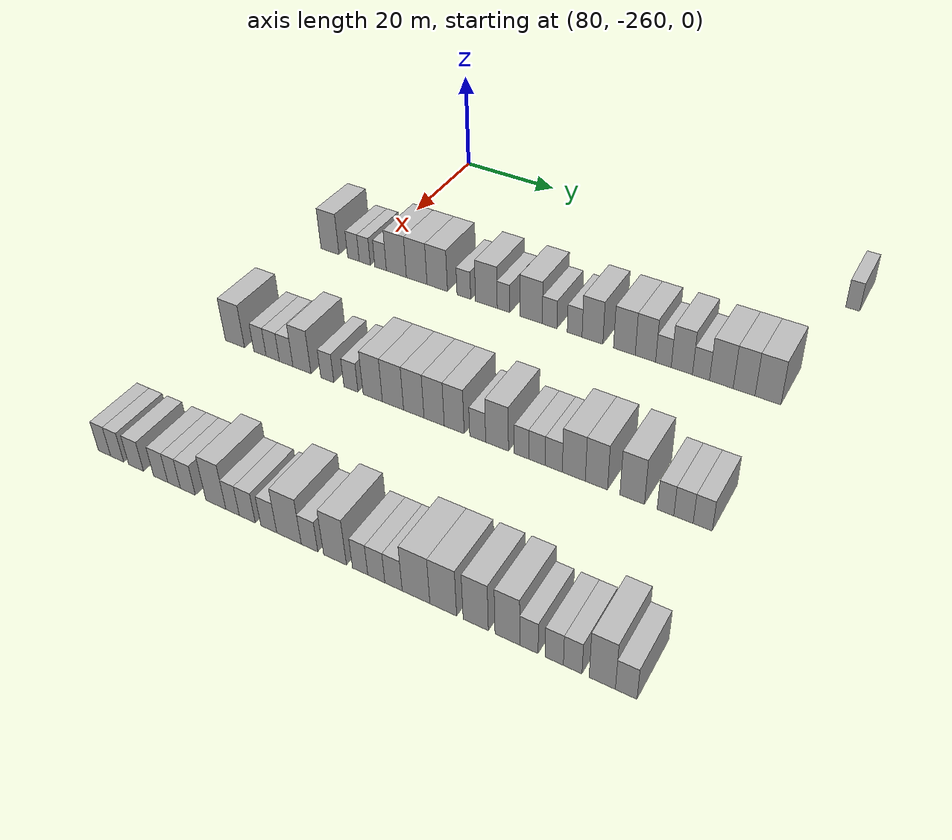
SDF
<sdf version="1.6">
 <world name="default">
  <model name="building_524">
   <static>1</static>
   <pose>85.0000 -175.2092 0 0.000000 0.000000 0.000000</pose>
   <link name="link">
    <pose>0 0 3.00 0 0 0</pose>
    <collision name="collision"><geometry><box><size>10.0000 2.5153 6.0000</size></box></geometry></collision>
    <visual name="visual">
     <cast_shadows>0</cast_shadows>
     <geometry><box><size>10.0000 2.5153 6.0000</size></box></geometry>
     <material>
      <script>
       <uri>model://HANNAS_wall/materials/scripts</uri>
       <uri>model://HANNAS_wall/materials/textures</uri>
       <name>vrc/HANNAS_wall</name>
      </script>
     </material>
    </visual>
   </link>
  </model>
  <model name="building_735">
   <static>1</static>
   <pose>115.0000 -266.6170 0 0.000000 0.000000 0.000000</pose>
   <link name="link">
    <pose>0 0 4.50 0 0 0</pose>
    <collision name="collision"><geometry><box><size>10.0000 4.1498 9.0000</size></box></geometry></collision>
    <visual name="visual">
     <cast_shadows>0</cast_shadows>
     <geometry><box><size>10.0000 4.1498 9.0000</size></box></geometry>
     <material>
      <script>
       <uri>model://HANNAS_wall/materials/scripts</uri>
       <uri>model://HANNAS_wall/materials/textures</uri>
       <name>vrc/HANNAS_wall</name>
      </script>
     </material>
    </visual>
   </link>
  </model>
  <model name="building_736">
   <static>1</static>
   <pose>115.0000 -261.2384 0 0.000000 0.000000 0.000000</pose>
   <link name="link">
    <pose>0 0 3.00 0 0 0</pose>
    <collision name="collision"><geometry><box><size>10.0000 2.6075 6.0000</size></box></geometry></collision>
    <visual name="visual">
     <cast_shadows>0</cast_shadows>
     <geometry><box><size>10.0000 2.6075 6.0000</size></box></geometry>
     <material>
      <script>
       <uri>model://HANNAS_wall/materials/scripts</uri>
       <uri>model://HANNAS_wall/materials/textures</uri>
       <name>vrc/HANNAS_wall</name>
      </script>
     </material>
    </visual>
   </link>
  </model>
  <model name="building_737">
   <static>1</static>
   <pose>115.0000 -258.6811 0 0.000000 0.000000 0.000000</pose>
   <link name="link">
    <pose>0 0 3.00 0 0 0</pose>
    <collision name="collision"><geometry><box><size>10.0000 2.5071 6.0000</size></box></geometry></collision>
    <visual name="visual">
     <cast_shadows>0</cast_shadows>
     <geometry><box><size>10.0000 2.5071 6.0000</size></box></geometry>
     <material>
      <script>
       <uri>model://HANNAS_wall/materials/scripts</uri>
       <uri>model://HANNAS_wall/materials/textures</uri>
       <name>vrc/HANNAS_wall</name>
      </script>
     </material>
    </visual>
   </link>
  </model>
  <model name="building_738">
   <static>1</static>
   <pose>115.0000 -255.1444 0 0.000000 0.000000 0.000000</pose>
   <link name="link">
    <pose>0 0 3.00 0 0 0</pose>
    <collision name="collision"><geometry><box><size>10.0000 2.5662 6.0000</size></box></geometry></collision>
    <visual name="visual">
     <cast_shadows>0</cast_shadows>
     <geometry><box><size>10.0000 2.5662 6.0000</size></box></geometry>
     <material>
      <script>
       <uri>model://HANNAS_wall/materials/scripts</uri>
       <uri>model://HANNAS_wall/materials/textures</uri>
       <name>vrc/HANNAS_wall</name>
      </script>
     </material>
    </visual>
   </link>
  </model>
  <model name="building_739">
   <static>1</static>
   <pose>115.0000 -251.6676 0 0.000000 0.000000 0.000000</pose>
   <link name="link">
    <pose>0 0 4.50 0 0 0</pose>
    <collision name="collision"><geometry><box><size>10.0000 4.3874 9.0000</size></box></geometry></collision>
    <visual name="visual">
     <cast_shadows>0</cast_shadows>
     <geometry><box><size>10.0000 4.3874 9.0000</size></box></geometry>
     <material>
      <script>
       <uri>model://HANNAS_wall/materials/scripts</uri>
       <uri>model://HANNAS_wall/materials/textures</uri>
       <name>vrc/HANNAS_wall</name>
      </script>
     </material>
    </visual>
   </link>
  </model>
  <model name="building_740">
   <static>1</static>
   <pose>115.0000 -247.2451 0 0.000000 0.000000 0.000000</pose>
   <link name="link">
    <pose>0 0 4.50 0 0 0</pose>
    <collision name="collision"><geometry><box><size>10.0000 4.4577 9.0000</size></box></geometry></collision>
    <visual name="visual">
     <cast_shadows>0</cast_shadows>
     <geometry><box><size>10.0000 4.4577 9.0000</size></box></geometry>
     <material>
      <script>
       <uri>model://HANNAS_wall/materials/scripts</uri>
       <uri>model://HANNAS_wall/materials/textures</uri>
       <name>vrc/HANNAS_wall</name>
      </script>
     </material>
    </visual>
   </link>
  </model>
  <model name="building_741">
   <static>1</static>
   <pose>115.0000 -242.8344 0 0.000000 0.000000 0.000000</pose>
   <link name="link">
    <pose>0 0 4.50 0 0 0</pose>
    <collision name="collision"><geometry><box><size>10.0000 4.3636 9.0000</size></box></geometry></collision>
    <visual name="visual">
     <cast_shadows>0</cast_shadows>
     <geometry><box><size>10.0000 4.3636 9.0000</size></box></geometry>
     <material>
      <script>
       <uri>model://HANNAS_wall/materials/scripts</uri>
       <uri>model://HANNAS_wall/materials/textures</uri>
       <name>vrc/HANNAS_wall</name>
      </script>
     </material>
    </visual>
   </link>
  </model>
  <model name="building_742">
   <static>1</static>
   <pose>115.0000 -237.2269 0 0.000000 0.000000 0.000000</pose>
   <link name="link">
    <pose>0 0 3.00 0 0 0</pose>
    <collision name="collision"><geometry><box><size>10.0000 2.8513 6.0000</size></box></geometry></collision>
    <visual name="visual">
     <cast_shadows>0</cast_shadows>
     <geometry><box><size>10.0000 2.8513 6.0000</size></box></geometry>
     <material>
      <script>
       <uri>model://HANNAS_wall/materials/scripts</uri>
       <uri>model://HANNAS_wall/materials/textures</uri>
       <name>vrc/HANNAS_wall</name>
      </script>
     </material>
    </visual>
   </link>
  </model>
  <model name="building_743">
   <static>1</static>
   <pose>115.0000 -232.5745 0 0.000000 0.000000 0.000000</pose>
   <link name="link">
    <pose>0 0 4.50 0 0 0</pose>
    <collision name="collision"><geometry><box><size>10.0000 4.4535 9.0000</size></box></geometry></collision>
    <visual name="visual">
     <cast_shadows>0</cast_shadows>
     <geometry><box><size>10.0000 4.4535 9.0000</size></box></geometry>
     <material>
      <script>
       <uri>model://HANNAS_wall/materials/scripts</uri>
       <uri>model://HANNAS_wall/materials/textures</uri>
       <name>vrc/HANNAS_wall</name>
      </script>
     </material>
    </visual>
   </link>
  </model>
  <model name="building_744">
   <static>1</static>
   <pose>115.0000 -229.0693 0 0.000000 0.000000 0.000000</pose>
   <link name="link">
    <pose>0 0 3.00 0 0 0</pose>
    <collision name="collision"><geometry><box><size>10.0000 2.5570 6.0000</size></box></geometry></collision>
    <visual name="visual">
     <cast_shadows>0</cast_shadows>
     <geometry><box><size>10.0000 2.5570 6.0000</size></box></geometry>
     <material>
      <script>
       <uri>model://HANNAS_wall/materials/scripts</uri>
       <uri>model://HANNAS_wall/materials/textures</uri>
       <name>vrc/HANNAS_wall</name>
      </script>
     </material>
    </visual>
   </link>
  </model>
  <model name="building_745">
   <static>1</static>
   <pose>115.0000 -223.5674 0 0.000000 0.000000 0.000000</pose>
   <link name="link">
    <pose>0 0 4.50 0 0 0</pose>
    <collision name="collision"><geometry><box><size>10.0000 4.4467 9.0000</size></box></geometry></collision>
    <visual name="visual">
     <cast_shadows>0</cast_shadows>
     <geometry><box><size>10.0000 4.4467 9.0000</size></box></geometry>
     <material>
      <script>
       <uri>model://HANNAS_wall/materials/scripts</uri>
       <uri>model://HANNAS_wall/materials/textures</uri>
       <name>vrc/HANNAS_wall</name>
      </script>
     </material>
    </visual>
   </link>
  </model>
  <model name="building_746">
   <static>1</static>
   <pose>115.0000 -219.9164 0 0.000000 0.000000 0.000000</pose>
   <link name="link">
    <pose>0 0 3.00 0 0 0</pose>
    <collision name="collision"><geometry><box><size>10.0000 2.8552 6.0000</size></box></geometry></collision>
    <visual name="visual">
     <cast_shadows>0</cast_shadows>
     <geometry><box><size>10.0000 2.8552 6.0000</size></box></geometry>
     <material>
      <script>
       <uri>model://HANNAS_wall/materials/scripts</uri>
       <uri>model://HANNAS_wall/materials/textures</uri>
       <name>vrc/HANNAS_wall</name>
      </script>
     </material>
    </visual>
   </link>
  </model>
  <model name="building_747">
   <static>1</static>
   <pose>115.0000 -215.0705 0 0.000000 0.000000 0.000000</pose>
   <link name="link">
    <pose>0 0 3.00 0 0 0</pose>
    <collision name="collision"><geometry><box><size>10.0000 2.8367 6.0000</size></box></geometry></collision>
    <visual name="visual">
     <cast_shadows>0</cast_shadows>
     <geometry><box><size>10.0000 2.8367 6.0000</size></box></geometry>
     <material>
      <script>
       <uri>model://HANNAS_wall/materials/scripts</uri>
       <uri>model://HANNAS_wall/materials/textures</uri>
       <name>vrc/HANNAS_wall</name>
      </script>
     </material>
    </visual>
   </link>
  </model>
  <model name="building_748">
   <static>1</static>
   <pose>115.0000 -211.6782 0 0.000000 0.000000 0.000000</pose>
   <link name="link">
    <pose>0 0 4.50 0 0 0</pose>
    <collision name="collision"><geometry><box><size>10.0000 3.9478 9.0000</size></box></geometry></collision>
    <visual name="visual">
     <cast_shadows>0</cast_shadows>
     <geometry><box><size>10.0000 3.9478 9.0000</size></box></geometry>
     <material>
      <script>
       <uri>model://HANNAS_wall/materials/scripts</uri>
       <uri>model://HANNAS_wall/materials/textures</uri>
       <name>vrc/HANNAS_wall</name>
      </script>
     </material>
    </visual>
   </link>
  </model>
  <model name="building_749">
   <static>1</static>
   <pose>115.0000 -205.6958 0 0.000000 0.000000 0.000000</pose>
   <link name="link">
    <pose>0 0 4.50 0 0 0</pose>
    <collision name="collision"><geometry><box><size>10.0000 4.0170 9.0000</size></box></geometry></collision>
    <visual name="visual">
     <cast_shadows>0</cast_shadows>
     <geometry><box><size>10.0000 4.0170 9.0000</size></box></geometry>
     <material>
      <script>
       <uri>model://HANNAS_wall/materials/scripts</uri>
       <uri>model://HANNAS_wall/materials/textures</uri>
       <name>vrc/HANNAS_wall</name>
      </script>
     </material>
    </visual>
   </link>
  </model>
  <model name="building_750">
   <static>1</static>
   <pose>115.0000 -201.8261 0 0.000000 0.000000 0.000000</pose>
   <link name="link">
    <pose>0 0 4.50 0 0 0</pose>
    <collision name="collision"><geometry><box><size>10.0000 3.7223 9.0000</size></box></geometry></collision>
    <visual name="visual">
     <cast_shadows>0</cast_shadows>
     <geometry><box><size>10.0000 3.7223 9.0000</size></box></geometry>
     <material>
      <script>
       <uri>model://HANNAS_wall/materials/scripts</uri>
       <uri>model://HANNAS_wall/materials/textures</uri>
       <name>vrc/HANNAS_wall</name>
      </script>
     </material>
    </visual>
   </link>
  </model>
  <model name="building_751">
   <static>1</static>
   <pose>115.0000 -198.5601 0 0.000000 0.000000 0.000000</pose>
   <link name="link">
    <pose>0 0 3.00 0 0 0</pose>
    <collision name="collision"><geometry><box><size>10.0000 2.8098 6.0000</size></box></geometry></collision>
    <visual name="visual">
     <cast_shadows>0</cast_shadows>
     <geometry><box><size>10.0000 2.8098 6.0000</size></box></geometry>
     <material>
      <script>
       <uri>model://HANNAS_wall/materials/scripts</uri>
       <uri>model://HANNAS_wall/materials/textures</uri>
       <name>vrc/HANNAS_wall</name>
      </script>
     </material>
    </visual>
   </link>
  </model>
  <model name="building_752">
   <static>1</static>
   <pose>115.0000 -195.2658 0 0.000000 0.000000 0.000000</pose>
   <link name="link">
    <pose>0 0 4.50 0 0 0</pose>
    <collision name="collision"><geometry><box><size>10.0000 3.7789 9.0000</size></box></geometry></collision>
    <visual name="visual">
     <cast_shadows>0</cast_shadows>
     <geometry><box><size>10.0000 3.7789 9.0000</size></box></geometry>
     <material>
      <script>
       <uri>model://HANNAS_wall/materials/scripts</uri>
       <uri>model://HANNAS_wall/materials/textures</uri>
       <name>vrc/HANNAS_wall</name>
      </script>
     </material>
    </visual>
   </link>
  </model>
  <model name="building_753">
   <static>1</static>
   <pose>115.0000 -191.8789 0 0.000000 0.000000 0.000000</pose>
   <link name="link">
    <pose>0 0 3.00 0 0 0</pose>
    <collision name="collision"><geometry><box><size>10.0000 2.9948 6.0000</size></box></geometry></collision>
    <visual name="visual">
     <cast_shadows>0</cast_shadows>
     <geometry><box><size>10.0000 2.9948 6.0000</size></box></geometry>
     <material>
      <script>
       <uri>model://HANNAS_wall/materials/scripts</uri>
       <uri>model://HANNAS_wall/materials/textures</uri>
       <name>vrc/HANNAS_wall</name>
      </script>
     </material>
    </visual>
   </link>
  </model>
  <model name="building_754">
   <static>1</static>
   <pose>115.0000 -188.3376 0 0.000000 0.000000 0.000000</pose>
   <link name="link">
    <pose>0 0 4.50 0 0 0</pose>
    <collision name="collision"><geometry><box><size>10.0000 4.0879 9.0000</size></box></geometry></collision>
    <visual name="visual">
     <cast_shadows>0</cast_shadows>
     <geometry><box><size>10.0000 4.0879 9.0000</size></box></geometry>
     <material>
      <script>
       <uri>model://HANNAS_wall/materials/scripts</uri>
       <uri>model://HANNAS_wall/materials/textures</uri>
       <name>vrc/HANNAS_wall</name>
      </script>
     </material>
    </visual>
   </link>
  </model>
  <model name="building_755">
   <static>1</static>
   <pose>115.0000 -184.4282 0 0.000000 0.000000 0.000000</pose>
   <link name="link">
    <pose>0 0 4.50 0 0 0</pose>
    <collision name="collision"><geometry><box><size>10.0000 3.7308 9.0000</size></box></geometry></collision>
    <visual name="visual">
     <cast_shadows>0</cast_shadows>
     <geometry><box><size>10.0000 3.7308 9.0000</size></box></geometry>
     <material>
      <script>
       <uri>model://HANNAS_wall/materials/scripts</uri>
       <uri>model://HANNAS_wall/materials/textures</uri>
       <name>vrc/HANNAS_wall</name>
      </script>
     </material>
    </visual>
   </link>
  </model>
  <model name="building_756">
   <static>1</static>
   <pose>115.0000 -180.3870 0 0.000000 0.000000 0.000000</pose>
   <link name="link">
    <pose>0 0 4.50 0 0 0</pose>
    <collision name="collision"><geometry><box><size>10.0000 4.3516 9.0000</size></box></geometry></collision>
    <visual name="visual">
     <cast_shadows>0</cast_shadows>
     <geometry><box><size>10.0000 4.3516 9.0000</size></box></geometry>
     <material>
      <script>
       <uri>model://HANNAS_wall/materials/scripts</uri>
       <uri>model://HANNAS_wall/materials/textures</uri>
       <name>vrc/HANNAS_wall</name>
      </script>
     </material>
    </visual>
   </link>
  </model>
  <model name="building_968">
   <static>1</static>
   <pose>145.0000 -264.5922 0 0.000000 0.000000 0.000000</pose>
   <link name="link">
    <pose>0 0 4.50 0 0 0</pose>
    <collision name="collision"><geometry><box><size>10.0000 4.1512 9.0000</size></box></geometry></collision>
    <visual name="visual">
     <cast_shadows>0</cast_shadows>
     <geometry><box><size>10.0000 4.1512 9.0000</size></box></geometry>
     <material>
      <script>
       <uri>model://HANNAS_wall/materials/scripts</uri>
       <uri>model://HANNAS_wall/materials/textures</uri>
       <name>vrc/HANNAS_wall</name>
      </script>
     </material>
    </visual>
   </link>
  </model>
  <model name="building_969">
   <static>1</static>
   <pose>145.0000 -259.2133 0 0.000000 0.000000 0.000000</pose>
   <link name="link">
    <pose>0 0 3.00 0 0 0</pose>
    <collision name="collision"><geometry><box><size>10.0000 2.6068 6.0000</size></box></geometry></collision>
    <visual name="visual">
     <cast_shadows>0</cast_shadows>
     <geometry><box><size>10.0000 2.6068 6.0000</size></box></geometry>
     <material>
      <script>
       <uri>model://HANNAS_wall/materials/scripts</uri>
       <uri>model://HANNAS_wall/materials/textures</uri>
       <name>vrc/HANNAS_wall</name>
      </script>
     </material>
    </visual>
   </link>
  </model>
  <model name="building_970">
   <static>1</static>
   <pose>145.0000 -256.5124 0 0.000000 0.000000 0.000000</pose>
   <link name="link">
    <pose>0 0 3.00 0 0 0</pose>
    <collision name="collision"><geometry><box><size>10.0000 2.7950 6.0000</size></box></geometry></collision>
    <visual name="visual">
     <cast_shadows>0</cast_shadows>
     <geometry><box><size>10.0000 2.7950 6.0000</size></box></geometry>
     <material>
      <script>
       <uri>model://HANNAS_wall/materials/scripts</uri>
       <uri>model://HANNAS_wall/materials/textures</uri>
       <name>vrc/HANNAS_wall</name>
      </script>
     </material>
    </visual>
   </link>
  </model>
  <model name="building_971">
   <static>1</static>
   <pose>145.0000 -253.7049 0 0.000000 0.000000 0.000000</pose>
   <link name="link">
    <pose>0 0 3.00 0 0 0</pose>
    <collision name="collision"><geometry><box><size>10.0000 2.8201 6.0000</size></box></geometry></collision>
    <visual name="visual">
     <cast_shadows>0</cast_shadows>
     <geometry><box><size>10.0000 2.8201 6.0000</size></box></geometry>
     <material>
      <script>
       <uri>model://HANNAS_wall/materials/scripts</uri>
       <uri>model://HANNAS_wall/materials/textures</uri>
       <name>vrc/HANNAS_wall</name>
      </script>
     </material>
    </visual>
   </link>
  </model>
  <model name="building_972">
   <static>1</static>
   <pose>145.0000 -250.4410 0 0.000000 0.000000 0.000000</pose>
   <link name="link">
    <pose>0 0 4.50 0 0 0</pose>
    <collision name="collision"><geometry><box><size>10.0000 3.7076 9.0000</size></box></geometry></collision>
    <visual name="visual">
     <cast_shadows>0</cast_shadows>
     <geometry><box><size>10.0000 3.7076 9.0000</size></box></geometry>
     <material>
      <script>
       <uri>model://HANNAS_wall/materials/scripts</uri>
       <uri>model://HANNAS_wall/materials/textures</uri>
       <name>vrc/HANNAS_wall</name>
      </script>
     </material>
    </visual>
   </link>
  </model>
  <model name="building_973">
   <static>1</static>
   <pose>145.0000 -245.2767 0 0.000000 0.000000 0.000000</pose>
   <link name="link">
    <pose>0 0 3.00 0 0 0</pose>
    <collision name="collision"><geometry><box><size>10.0000 2.6211 6.0000</size></box></geometry></collision>
    <visual name="visual">
     <cast_shadows>0</cast_shadows>
     <geometry><box><size>10.0000 2.6211 6.0000</size></box></geometry>
     <material>
      <script>
       <uri>model://HANNAS_wall/materials/scripts</uri>
       <uri>model://HANNAS_wall/materials/textures</uri>
       <name>vrc/HANNAS_wall</name>
      </script>
     </material>
    </visual>
   </link>
  </model>
  <model name="building_974">
   <static>1</static>
   <pose>145.0000 -240.5764 0 0.000000 0.000000 0.000000</pose>
   <link name="link">
    <pose>0 0 3.00 0 0 0</pose>
    <collision name="collision"><geometry><box><size>10.0000 2.7794 6.0000</size></box></geometry></collision>
    <visual name="visual">
     <cast_shadows>0</cast_shadows>
     <geometry><box><size>10.0000 2.7794 6.0000</size></box></geometry>
     <material>
      <script>
       <uri>model://HANNAS_wall/materials/scripts</uri>
       <uri>model://HANNAS_wall/materials/textures</uri>
       <name>vrc/HANNAS_wall</name>
      </script>
     </material>
    </visual>
   </link>
  </model>
  <model name="building_975">
   <static>1</static>
   <pose>145.0000 -236.3157 0 0.000000 0.000000 0.000000</pose>
   <link name="link">
    <pose>0 0 4.50 0 0 0</pose>
    <collision name="collision"><geometry><box><size>10.0000 3.7422 9.0000</size></box></geometry></collision>
    <visual name="visual">
     <cast_shadows>0</cast_shadows>
     <geometry><box><size>10.0000 3.7422 9.0000</size></box></geometry>
     <material>
      <script>
       <uri>model://HANNAS_wall/materials/scripts</uri>
       <uri>model://HANNAS_wall/materials/textures</uri>
       <name>vrc/HANNAS_wall</name>
      </script>
     </material>
    </visual>
   </link>
  </model>
  <model name="building_976">
   <static>1</static>
   <pose>145.0000 -232.4217 0 0.000000 0.000000 0.000000</pose>
   <link name="link">
    <pose>0 0 4.50 0 0 0</pose>
    <collision name="collision"><geometry><box><size>10.0000 4.0458 9.0000</size></box></geometry></collision>
    <visual name="visual">
     <cast_shadows>0</cast_shadows>
     <geometry><box><size>10.0000 4.0458 9.0000</size></box></geometry>
     <material>
      <script>
       <uri>model://HANNAS_wall/materials/scripts</uri>
       <uri>model://HANNAS_wall/materials/textures</uri>
       <name>vrc/HANNAS_wall</name>
      </script>
     </material>
    </visual>
   </link>
  </model>
  <model name="building_977">
   <static>1</static>
   <pose>145.0000 -228.4781 0 0.000000 0.000000 0.000000</pose>
   <link name="link">
    <pose>0 0 4.50 0 0 0</pose>
    <collision name="collision"><geometry><box><size>10.0000 3.8412 9.0000</size></box></geometry></collision>
    <visual name="visual">
     <cast_shadows>0</cast_shadows>
     <geometry><box><size>10.0000 3.8412 9.0000</size></box></geometry>
     <material>
      <script>
       <uri>model://HANNAS_wall/materials/scripts</uri>
       <uri>model://HANNAS_wall/materials/textures</uri>
       <name>vrc/HANNAS_wall</name>
      </script>
     </material>
    </visual>
   </link>
  </model>
  <model name="building_978">
   <static>1</static>
   <pose>145.0000 -224.6836 0 0.000000 0.000000 0.000000</pose>
   <link name="link">
    <pose>0 0 4.50 0 0 0</pose>
    <collision name="collision"><geometry><box><size>10.0000 3.7477 9.0000</size></box></geometry></collision>
    <visual name="visual">
     <cast_shadows>0</cast_shadows>
     <geometry><box><size>10.0000 3.7477 9.0000</size></box></geometry>
     <material>
      <script>
       <uri>model://HANNAS_wall/materials/scripts</uri>
       <uri>model://HANNAS_wall/materials/textures</uri>
       <name>vrc/HANNAS_wall</name>
      </script>
     </material>
    </visual>
   </link>
  </model>
  <model name="building_979">
   <static>1</static>
   <pose>145.0000 -220.9949 0 0.000000 0.000000 0.000000</pose>
   <link name="link">
    <pose>0 0 4.50 0 0 0</pose>
    <collision name="collision"><geometry><box><size>10.0000 3.6297 9.0000</size></box></geometry></collision>
    <visual name="visual">
     <cast_shadows>0</cast_shadows>
     <geometry><box><size>10.0000 3.6297 9.0000</size></box></geometry>
     <material>
      <script>
       <uri>model://HANNAS_wall/materials/scripts</uri>
       <uri>model://HANNAS_wall/materials/textures</uri>
       <name>vrc/HANNAS_wall</name>
      </script>
     </material>
    </visual>
   </link>
  </model>
  <model name="building_980">
   <static>1</static>
   <pose>145.0000 -216.7549 0 0.000000 0.000000 0.000000</pose>
   <link name="link">
    <pose>0 0 3.00 0 0 0</pose>
    <collision name="collision"><geometry><box><size>10.0000 2.8504 6.0000</size></box></geometry></collision>
    <visual name="visual">
     <cast_shadows>0</cast_shadows>
     <geometry><box><size>10.0000 2.8504 6.0000</size></box></geometry>
     <material>
      <script>
       <uri>model://HANNAS_wall/materials/scripts</uri>
       <uri>model://HANNAS_wall/materials/textures</uri>
       <name>vrc/HANNAS_wall</name>
      </script>
     </material>
    </visual>
   </link>
  </model>
  <model name="building_981">
   <static>1</static>
   <pose>145.0000 -213.3160 0 0.000000 0.000000 0.000000</pose>
   <link name="link">
    <pose>0 0 4.50 0 0 0</pose>
    <collision name="collision"><geometry><box><size>10.0000 4.0274 9.0000</size></box></geometry></collision>
    <visual name="visual">
     <cast_shadows>0</cast_shadows>
     <geometry><box><size>10.0000 4.0274 9.0000</size></box></geometry>
     <material>
      <script>
       <uri>model://HANNAS_wall/materials/scripts</uri>
       <uri>model://HANNAS_wall/materials/textures</uri>
       <name>vrc/HANNAS_wall</name>
      </script>
     </material>
    </visual>
   </link>
  </model>
  <model name="building_982">
   <static>1</static>
   <pose>145.0000 -209.0618 0 0.000000 0.000000 0.000000</pose>
   <link name="link">
    <pose>0 0 3.00 0 0 0</pose>
    <collision name="collision"><geometry><box><size>10.0000 2.4808 6.0000</size></box></geometry></collision>
    <visual name="visual">
     <cast_shadows>0</cast_shadows>
     <geometry><box><size>10.0000 2.4808 6.0000</size></box></geometry>
     <material>
      <script>
       <uri>model://HANNAS_wall/materials/scripts</uri>
       <uri>model://HANNAS_wall/materials/textures</uri>
       <name>vrc/HANNAS_wall</name>
      </script>
     </material>
    </visual>
   </link>
  </model>
  <model name="building_983">
   <static>1</static>
   <pose>145.0000 -206.4024 0 0.000000 0.000000 0.000000</pose>
   <link name="link">
    <pose>0 0 3.00 0 0 0</pose>
    <collision name="collision"><geometry><box><size>10.0000 2.8380 6.0000</size></box></geometry></collision>
    <visual name="visual">
     <cast_shadows>0</cast_shadows>
     <geometry><box><size>10.0000 2.8380 6.0000</size></box></geometry>
     <material>
      <script>
       <uri>model://HANNAS_wall/materials/scripts</uri>
       <uri>model://HANNAS_wall/materials/textures</uri>
       <name>vrc/HANNAS_wall</name>
      </script>
     </material>
    </visual>
   </link>
  </model>
  <model name="building_984">
   <static>1</static>
   <pose>145.0000 -203.5335 0 0.000000 0.000000 0.000000</pose>
   <link name="link">
    <pose>0 0 3.00 0 0 0</pose>
    <collision name="collision"><geometry><box><size>10.0000 2.8998 6.0000</size></box></geometry></collision>
    <visual name="visual">
     <cast_shadows>0</cast_shadows>
     <geometry><box><size>10.0000 2.8998 6.0000</size></box></geometry>
     <material>
      <script>
       <uri>model://HANNAS_wall/materials/scripts</uri>
       <uri>model://HANNAS_wall/materials/textures</uri>
       <name>vrc/HANNAS_wall</name>
      </script>
     </material>
    </visual>
   </link>
  </model>
  <model name="building_985">
   <static>1</static>
   <pose>145.0000 -200.1637 0 0.000000 0.000000 0.000000</pose>
   <link name="link">
    <pose>0 0 4.50 0 0 0</pose>
    <collision name="collision"><geometry><box><size>10.0000 3.8398 9.0000</size></box></geometry></collision>
    <visual name="visual">
     <cast_shadows>0</cast_shadows>
     <geometry><box><size>10.0000 3.8398 9.0000</size></box></geometry>
     <material>
      <script>
       <uri>model://HANNAS_wall/materials/scripts</uri>
       <uri>model://HANNAS_wall/materials/textures</uri>
       <name>vrc/HANNAS_wall</name>
      </script>
     </material>
    </visual>
   </link>
  </model>
  <model name="building_986">
   <static>1</static>
   <pose>145.0000 -196.4187 0 0.000000 0.000000 0.000000</pose>
   <link name="link">
    <pose>0 0 4.50 0 0 0</pose>
    <collision name="collision"><geometry><box><size>10.0000 3.6501 9.0000</size></box></geometry></collision>
    <visual name="visual">
     <cast_shadows>0</cast_shadows>
     <geometry><box><size>10.0000 3.6501 9.0000</size></box></geometry>
     <material>
      <script>
       <uri>model://HANNAS_wall/materials/scripts</uri>
       <uri>model://HANNAS_wall/materials/textures</uri>
       <name>vrc/HANNAS_wall</name>
      </script>
     </material>
    </visual>
   </link>
  </model>
  <model name="building_987">
   <static>1</static>
   <pose>145.0000 -190.6261 0 0.000000 0.000000 0.000000</pose>
   <link name="link">
    <pose>0 0 4.50 0 0 0</pose>
    <collision name="collision"><geometry><box><size>10.0000 3.9352 9.0000</size></box></geometry></collision>
    <visual name="visual">
     <cast_shadows>0</cast_shadows>
     <geometry><box><size>10.0000 3.9352 9.0000</size></box></geometry>
     <material>
      <script>
       <uri>model://HANNAS_wall/materials/scripts</uri>
       <uri>model://HANNAS_wall/materials/textures</uri>
       <name>vrc/HANNAS_wall</name>
      </script>
     </material>
    </visual>
   </link>
  </model>
  <model name="building_988">
   <static>1</static>
   <pose>145.0000 -185.3593 0 0.000000 0.000000 0.000000</pose>
   <link name="link">
    <pose>0 0 3.00 0 0 0</pose>
    <collision name="collision"><geometry><box><size>10.0000 2.5984 6.0000</size></box></geometry></collision>
    <visual name="visual">
     <cast_shadows>0</cast_shadows>
     <geometry><box><size>10.0000 2.5984 6.0000</size></box></geometry>
     <material>
      <script>
       <uri>model://HANNAS_wall/materials/scripts</uri>
       <uri>model://HANNAS_wall/materials/textures</uri>
       <name>vrc/HANNAS_wall</name>
      </script>
     </material>
    </visual>
   </link>
  </model>
  <model name="building_989">
   <static>1</static>
   <pose>145.0000 -182.5708 0 0.000000 0.000000 0.000000</pose>
   <link name="link">
    <pose>0 0 3.00 0 0 0</pose>
    <collision name="collision"><geometry><box><size>10.0000 2.9786 6.0000</size></box></geometry></collision>
    <visual name="visual">
     <cast_shadows>0</cast_shadows>
     <geometry><box><size>10.0000 2.9786 6.0000</size></box></geometry>
     <material>
      <script>
       <uri>model://HANNAS_wall/materials/scripts</uri>
       <uri>model://HANNAS_wall/materials/textures</uri>
       <name>vrc/HANNAS_wall</name>
      </script>
     </material>
    </visual>
   </link>
  </model>
  <model name="building_990">
   <static>1</static>
   <pose>145.0000 -179.6187 0 0.000000 0.000000 0.000000</pose>
   <link name="link">
    <pose>0 0 3.00 0 0 0</pose>
    <collision name="collision"><geometry><box><size>10.0000 2.9255 6.0000</size></box></geometry></collision>
    <visual name="visual">
     <cast_shadows>0</cast_shadows>
     <geometry><box><size>10.0000 2.9255 6.0000</size></box></geometry>
     <material>
      <script>
       <uri>model://HANNAS_wall/materials/scripts</uri>
       <uri>model://HANNAS_wall/materials/textures</uri>
       <name>vrc/HANNAS_wall</name>
      </script>
     </material>
    </visual>
   </link>
  </model>
  <model name="building_1198">
   <static>1</static>
   <pose>175.0000 -265.0509 0 0.000000 0.000000 0.000000</pose>
   <link name="link">
    <pose>0 0 3.00 0 0 0</pose>
    <collision name="collision"><geometry><box><size>10.0000 2.5200 6.0000</size></box></geometry></collision>
    <visual name="visual">
     <cast_shadows>0</cast_shadows>
     <geometry><box><size>10.0000 2.5200 6.0000</size></box></geometry>
     <material>
      <script>
       <uri>model://HANNAS_wall/materials/scripts</uri>
       <uri>model://HANNAS_wall/materials/textures</uri>
       <name>vrc/HANNAS_wall</name>
      </script>
     </material>
    </visual>
   </link>
  </model>
  <model name="building_1199">
   <static>1</static>
   <pose>175.0000 -262.4610 0 0.000000 0.000000 0.000000</pose>
   <link name="link">
    <pose>0 0 3.00 0 0 0</pose>
    <collision name="collision"><geometry><box><size>10.0000 2.6598 6.0000</size></box></geometry></collision>
    <visual name="visual">
     <cast_shadows>0</cast_shadows>
     <geometry><box><size>10.0000 2.6598 6.0000</size></box></geometry>
     <material>
      <script>
       <uri>model://HANNAS_wall/materials/scripts</uri>
       <uri>model://HANNAS_wall/materials/textures</uri>
       <name>vrc/HANNAS_wall</name>
      </script>
     </material>
    </visual>
   </link>
  </model>
  <model name="building_1200">
   <static>1</static>
   <pose>175.0000 -258.6572 0 0.000000 0.000000 0.000000</pose>
   <link name="link">
    <pose>0 0 3.00 0 0 0</pose>
    <collision name="collision"><geometry><box><size>10.0000 2.9478 6.0000</size></box></geometry></collision>
    <visual name="visual">
     <cast_shadows>0</cast_shadows>
     <geometry><box><size>10.0000 2.9478 6.0000</size></box></geometry>
     <material>
      <script>
       <uri>model://HANNAS_wall/materials/scripts</uri>
       <uri>model://HANNAS_wall/materials/textures</uri>
       <name>vrc/HANNAS_wall</name>
      </script>
     </material>
    </visual>
   </link>
  </model>
  <model name="building_1201">
   <static>1</static>
   <pose>175.0000 -253.7867 0 0.000000 0.000000 0.000000</pose>
   <link name="link">
    <pose>0 0 3.00 0 0 0</pose>
    <collision name="collision"><geometry><box><size>10.0000 2.7933 6.0000</size></box></geometry></collision>
    <visual name="visual">
     <cast_shadows>0</cast_shadows>
     <geometry><box><size>10.0000 2.7933 6.0000</size></box></geometry>
     <material>
      <script>
       <uri>model://HANNAS_wall/materials/scripts</uri>
       <uri>model://HANNAS_wall/materials/textures</uri>
       <name>vrc/HANNAS_wall</name>
      </script>
     </material>
    </visual>
   </link>
  </model>
  <model name="building_1202">
   <static>1</static>
   <pose>175.0000 -251.1774 0 0.000000 0.000000 0.000000</pose>
   <link name="link">
    <pose>0 0 3.00 0 0 0</pose>
    <collision name="collision"><geometry><box><size>10.0000 2.4251 6.0000</size></box></geometry></collision>
    <visual name="visual">
     <cast_shadows>0</cast_shadows>
     <geometry><box><size>10.0000 2.4251 6.0000</size></box></geometry>
     <material>
      <script>
       <uri>model://HANNAS_wall/materials/scripts</uri>
       <uri>model://HANNAS_wall/materials/textures</uri>
       <name>vrc/HANNAS_wall</name>
      </script>
     </material>
    </visual>
   </link>
  </model>
  <model name="building_1203">
   <static>1</static>
   <pose>175.0000 -248.5330 0 0.000000 0.000000 0.000000</pose>
   <link name="link">
    <pose>0 0 3.00 0 0 0</pose>
    <collision name="collision"><geometry><box><size>10.0000 2.8638 6.0000</size></box></geometry></collision>
    <visual name="visual">
     <cast_shadows>0</cast_shadows>
     <geometry><box><size>10.0000 2.8638 6.0000</size></box></geometry>
     <material>
      <script>
       <uri>model://HANNAS_wall/materials/scripts</uri>
       <uri>model://HANNAS_wall/materials/textures</uri>
       <name>vrc/HANNAS_wall</name>
      </script>
     </material>
    </visual>
   </link>
  </model>
  <model name="building_1204">
   <static>1</static>
   <pose>175.0000 -243.2343 0 0.000000 0.000000 0.000000</pose>
   <link name="link">
    <pose>0 0 4.50 0 0 0</pose>
    <collision name="collision"><geometry><box><size>10.0000 3.7334 9.0000</size></box></geometry></collision>
    <visual name="visual">
     <cast_shadows>0</cast_shadows>
     <geometry><box><size>10.0000 3.7334 9.0000</size></box></geometry>
     <material>
      <script>
       <uri>model://HANNAS_wall/materials/scripts</uri>
       <uri>model://HANNAS_wall/materials/textures</uri>
       <name>vrc/HANNAS_wall</name>
      </script>
     </material>
    </visual>
   </link>
  </model>
  <model name="building_1205">
   <static>1</static>
   <pose>175.0000 -240.1270 0 0.000000 0.000000 0.000000</pose>
   <link name="link">
    <pose>0 0 3.00 0 0 0</pose>
    <collision name="collision"><geometry><box><size>10.0000 2.4812 6.0000</size></box></geometry></collision>
    <visual name="visual">
     <cast_shadows>0</cast_shadows>
     <geometry><box><size>10.0000 2.4812 6.0000</size></box></geometry>
     <material>
      <script>
       <uri>model://HANNAS_wall/materials/scripts</uri>
       <uri>model://HANNAS_wall/materials/textures</uri>
       <name>vrc/HANNAS_wall</name>
      </script>
     </material>
    </visual>
   </link>
  </model>
  <model name="building_1206">
   <static>1</static>
   <pose>175.0000 -237.4350 0 0.000000 0.000000 0.000000</pose>
   <link name="link">
    <pose>0 0 3.00 0 0 0</pose>
    <collision name="collision"><geometry><box><size>10.0000 2.9029 6.0000</size></box></geometry></collision>
    <visual name="visual">
     <cast_shadows>0</cast_shadows>
     <geometry><box><size>10.0000 2.9029 6.0000</size></box></geometry>
     <material>
      <script>
       <uri>model://HANNAS_wall/materials/scripts</uri>
       <uri>model://HANNAS_wall/materials/textures</uri>
       <name>vrc/HANNAS_wall</name>
      </script>
     </material>
    </visual>
   </link>
  </model>
  <model name="building_1207">
   <static>1</static>
   <pose>175.0000 -233.5614 0 0.000000 0.000000 0.000000</pose>
   <link name="link">
    <pose>0 0 3.00 0 0 0</pose>
    <collision name="collision"><geometry><box><size>10.0000 2.8444 6.0000</size></box></geometry></collision>
    <visual name="visual">
     <cast_shadows>0</cast_shadows>
     <geometry><box><size>10.0000 2.8444 6.0000</size></box></geometry>
     <material>
      <script>
       <uri>model://HANNAS_wall/materials/scripts</uri>
       <uri>model://HANNAS_wall/materials/textures</uri>
       <name>vrc/HANNAS_wall</name>
      </script>
     </material>
    </visual>
   </link>
  </model>
  <model name="building_1208">
   <static>1</static>
   <pose>175.0000 -229.9814 0 0.000000 0.000000 0.000000</pose>
   <link name="link">
    <pose>0 0 4.50 0 0 0</pose>
    <collision name="collision"><geometry><box><size>10.0000 4.3156 9.0000</size></box></geometry></collision>
    <visual name="visual">
     <cast_shadows>0</cast_shadows>
     <geometry><box><size>10.0000 4.3156 9.0000</size></box></geometry>
     <material>
      <script>
       <uri>model://HANNAS_wall/materials/scripts</uri>
       <uri>model://HANNAS_wall/materials/textures</uri>
       <name>vrc/HANNAS_wall</name>
      </script>
     </material>
    </visual>
   </link>
  </model>
  <model name="building_1209">
   <static>1</static>
   <pose>175.0000 -226.3935 0 0.000000 0.000000 0.000000</pose>
   <link name="link">
    <pose>0 0 3.00 0 0 0</pose>
    <collision name="collision"><geometry><box><size>10.0000 2.8601 6.0000</size></box></geometry></collision>
    <visual name="visual">
     <cast_shadows>0</cast_shadows>
     <geometry><box><size>10.0000 2.8601 6.0000</size></box></geometry>
     <material>
      <script>
       <uri>model://HANNAS_wall/materials/scripts</uri>
       <uri>model://HANNAS_wall/materials/textures</uri>
       <name>vrc/HANNAS_wall</name>
      </script>
     </material>
    </visual>
   </link>
  </model>
  <model name="building_1210">
   <static>1</static>
   <pose>175.0000 -222.0266 0 0.000000 0.000000 0.000000</pose>
   <link name="link">
    <pose>0 0 4.50 0 0 0</pose>
    <collision name="collision"><geometry><box><size>10.0000 3.8738 9.0000</size></box></geometry></collision>
    <visual name="visual">
     <cast_shadows>0</cast_shadows>
     <geometry><box><size>10.0000 3.8738 9.0000</size></box></geometry>
     <material>
      <script>
       <uri>model://HANNAS_wall/materials/scripts</uri>
       <uri>model://HANNAS_wall/materials/textures</uri>
       <name>vrc/HANNAS_wall</name>
      </script>
     </material>
    </visual>
   </link>
  </model>
  <model name="building_1211">
   <static>1</static>
   <pose>175.0000 -217.8164 0 0.000000 0.000000 0.000000</pose>
   <link name="link">
    <pose>0 0 3.00 0 0 0</pose>
    <collision name="collision"><geometry><box><size>10.0000 2.5466 6.0000</size></box></geometry></collision>
    <visual name="visual">
     <cast_shadows>0</cast_shadows>
     <geometry><box><size>10.0000 2.5466 6.0000</size></box></geometry>
     <material>
      <script>
       <uri>model://HANNAS_wall/materials/scripts</uri>
       <uri>model://HANNAS_wall/materials/textures</uri>
       <name>vrc/HANNAS_wall</name>
      </script>
     </material>
    </visual>
   </link>
  </model>
  <model name="building_1212">
   <static>1</static>
   <pose>175.0000 -215.1409 0 0.000000 0.000000 0.000000</pose>
   <link name="link">
    <pose>0 0 3.00 0 0 0</pose>
    <collision name="collision"><geometry><box><size>10.0000 2.8045 6.0000</size></box></geometry></collision>
    <visual name="visual">
     <cast_shadows>0</cast_shadows>
     <geometry><box><size>10.0000 2.8045 6.0000</size></box></geometry>
     <material>
      <script>
       <uri>model://HANNAS_wall/materials/scripts</uri>
       <uri>model://HANNAS_wall/materials/textures</uri>
       <name>vrc/HANNAS_wall</name>
      </script>
     </material>
    </visual>
   </link>
  </model>
  <model name="building_1213">
   <static>1</static>
   <pose>175.0000 -212.3417 0 0.000000 0.000000 0.000000</pose>
   <link name="link">
    <pose>0 0 3.00 0 0 0</pose>
    <collision name="collision"><geometry><box><size>10.0000 2.7940 6.0000</size></box></geometry></collision>
    <visual name="visual">
     <cast_shadows>0</cast_shadows>
     <geometry><box><size>10.0000 2.7940 6.0000</size></box></geometry>
     <material>
      <script>
       <uri>model://HANNAS_wall/materials/scripts</uri>
       <uri>model://HANNAS_wall/materials/textures</uri>
       <name>vrc/HANNAS_wall</name>
      </script>
     </material>
    </visual>
   </link>
  </model>
  <model name="building_1214">
   <static>1</static>
   <pose>175.0000 -208.7437 0 0.000000 0.000000 0.000000</pose>
   <link name="link">
    <pose>0 0 4.50 0 0 0</pose>
    <collision name="collision"><geometry><box><size>10.0000 4.4020 9.0000</size></box></geometry></collision>
    <visual name="visual">
     <cast_shadows>0</cast_shadows>
     <geometry><box><size>10.0000 4.4020 9.0000</size></box></geometry>
     <material>
      <script>
       <uri>model://HANNAS_wall/materials/scripts</uri>
       <uri>model://HANNAS_wall/materials/textures</uri>
       <name>vrc/HANNAS_wall</name>
      </script>
     </material>
    </visual>
   </link>
  </model>
  <model name="building_1215">
   <static>1</static>
   <pose>175.0000 -204.4544 0 0.000000 0.000000 0.000000</pose>
   <link name="link">
    <pose>0 0 4.50 0 0 0</pose>
    <collision name="collision"><geometry><box><size>10.0000 4.1765 9.0000</size></box></geometry></collision>
    <visual name="visual">
     <cast_shadows>0</cast_shadows>
     <geometry><box><size>10.0000 4.1765 9.0000</size></box></geometry>
     <material>
      <script>
       <uri>model://HANNAS_wall/materials/scripts</uri>
       <uri>model://HANNAS_wall/materials/textures</uri>
       <name>vrc/HANNAS_wall</name>
      </script>
     </material>
    </visual>
   </link>
  </model>
  <model name="building_1216">
   <static>1</static>
   <pose>175.0000 -199.4507 0 0.000000 0.000000 0.000000</pose>
   <link name="link">
    <pose>0 0 4.50 0 0 0</pose>
    <collision name="collision"><geometry><box><size>10.0000 3.8310 9.0000</size></box></geometry></collision>
    <visual name="visual">
     <cast_shadows>0</cast_shadows>
     <geometry><box><size>10.0000 3.8310 9.0000</size></box></geometry>
     <material>
      <script>
       <uri>model://HANNAS_wall/materials/scripts</uri>
       <uri>model://HANNAS_wall/materials/textures</uri>
       <name>vrc/HANNAS_wall</name>
      </script>
     </material>
    </visual>
   </link>
  </model>
  <model name="building_1217">
   <static>1</static>
   <pose>175.0000 -194.7106 0 0.000000 0.000000 0.000000</pose>
   <link name="link">
    <pose>0 0 4.50 0 0 0</pose>
    <collision name="collision"><geometry><box><size>10.0000 3.6492 9.0000</size></box></geometry></collision>
    <visual name="visual">
     <cast_shadows>0</cast_shadows>
     <geometry><box><size>10.0000 3.6492 9.0000</size></box></geometry>
     <material>
      <script>
       <uri>model://HANNAS_wall/materials/scripts</uri>
       <uri>model://HANNAS_wall/materials/textures</uri>
       <name>vrc/HANNAS_wall</name>
      </script>
     </material>
    </visual>
   </link>
  </model>
  <model name="building_1218">
   <static>1</static>
   <pose>175.0000 -191.5392 0 0.000000 0.000000 0.000000</pose>
   <link name="link">
    <pose>0 0 3.00 0 0 0</pose>
    <collision name="collision"><geometry><box><size>10.0000 2.6937 6.0000</size></box></geometry></collision>
    <visual name="visual">
     <cast_shadows>0</cast_shadows>
     <geometry><box><size>10.0000 2.6937 6.0000</size></box></geometry>
     <material>
      <script>
       <uri>model://HANNAS_wall/materials/scripts</uri>
       <uri>model://HANNAS_wall/materials/textures</uri>
       <name>vrc/HANNAS_wall</name>
      </script>
     </material>
    </visual>
   </link>
  </model>
  <model name="building_1219">
   <static>1</static>
   <pose>175.0000 -187.8733 0 0.000000 0.000000 0.000000</pose>
   <link name="link">
    <pose>0 0 3.00 0 0 0</pose>
    <collision name="collision"><geometry><box><size>10.0000 2.6380 6.0000</size></box></geometry></collision>
    <visual name="visual">
     <cast_shadows>0</cast_shadows>
     <geometry><box><size>10.0000 2.6380 6.0000</size></box></geometry>
     <material>
      <script>
       <uri>model://HANNAS_wall/materials/scripts</uri>
       <uri>model://HANNAS_wall/materials/textures</uri>
       <name>vrc/HANNAS_wall</name>
      </script>
     </material>
    </visual>
   </link>
  </model>
  <model name="building_1220">
   <static>1</static>
   <pose>175.0000 -185.2369 0 0.000000 0.000000 0.000000</pose>
   <link name="link">
    <pose>0 0 3.00 0 0 0</pose>
    <collision name="collision"><geometry><box><size>10.0000 2.6348 6.0000</size></box></geometry></collision>
    <visual name="visual">
     <cast_shadows>0</cast_shadows>
     <geometry><box><size>10.0000 2.6348 6.0000</size></box></geometry>
     <material>
      <script>
       <uri>model://HANNAS_wall/materials/scripts</uri>
       <uri>model://HANNAS_wall/materials/textures</uri>
       <name>vrc/HANNAS_wall</name>
      </script>
     </material>
    </visual>
   </link>
  </model>
  <model name="building_1221">
   <static>1</static>
   <pose>175.0000 -181.1024 0 0.000000 0.000000 0.000000</pose>
   <link name="link">
    <pose>0 0 4.50 0 0 0</pose>
    <collision name="collision"><geometry><box><size>10.0000 3.6342 9.0000</size></box></geometry></collision>
    <visual name="visual">
     <cast_shadows>0</cast_shadows>
     <geometry><box><size>10.0000 3.6342 9.0000</size></box></geometry>
     <material>
      <script>
       <uri>model://HANNAS_wall/materials/scripts</uri>
       <uri>model://HANNAS_wall/materials/textures</uri>
       <name>vrc/HANNAS_wall</name>
      </script>
     </material>
    </visual>
   </link>
  </model>
  <model name="building_1222">
   <static>1</static>
   <pose>175.0000 -177.8117 0 0.000000 0.000000 0.000000</pose>
   <link name="link">
    <pose>0 0 3.00 0 0 0</pose>
    <collision name="collision"><geometry><box><size>10.0000 2.9474 6.0000</size></box></geometry></collision>
    <visual name="visual">
     <cast_shadows>0</cast_shadows>
     <geometry><box><size>10.0000 2.9474 6.0000</size></box></geometry>
     <material>
      <script>
       <uri>model://HANNAS_wall/materials/scripts</uri>
       <uri>model://HANNAS_wall/materials/textures</uri>
       <name>vrc/HANNAS_wall</name>
      </script>
     </material>
    </visual>
   </link>
  </model>
 </world>
</sdf>
